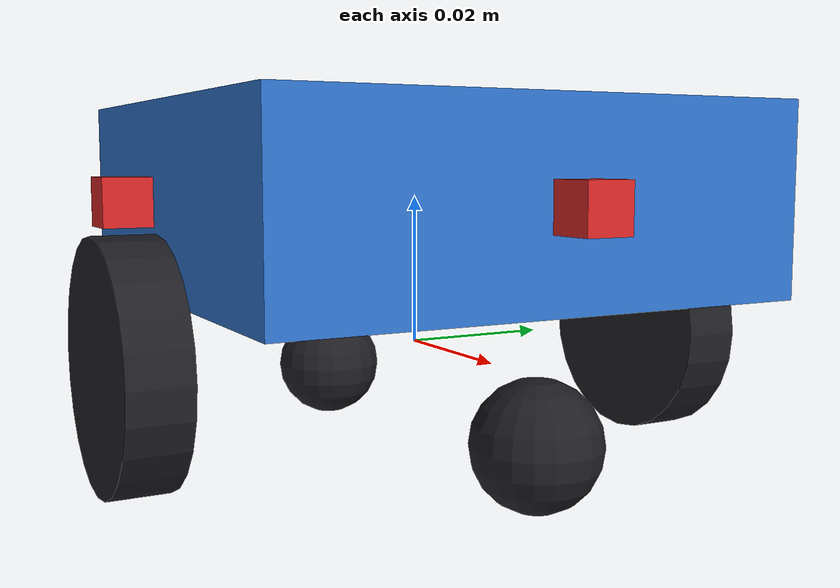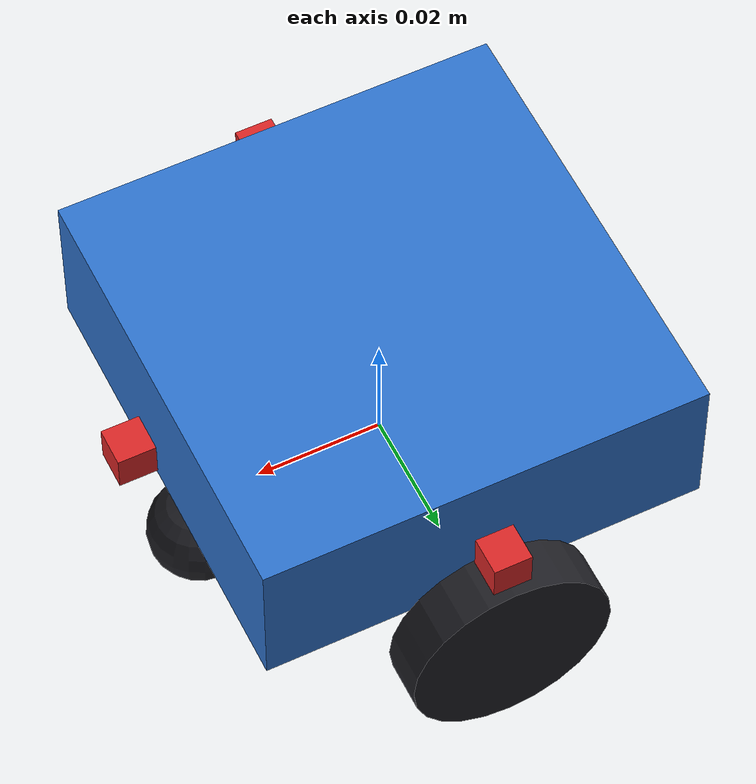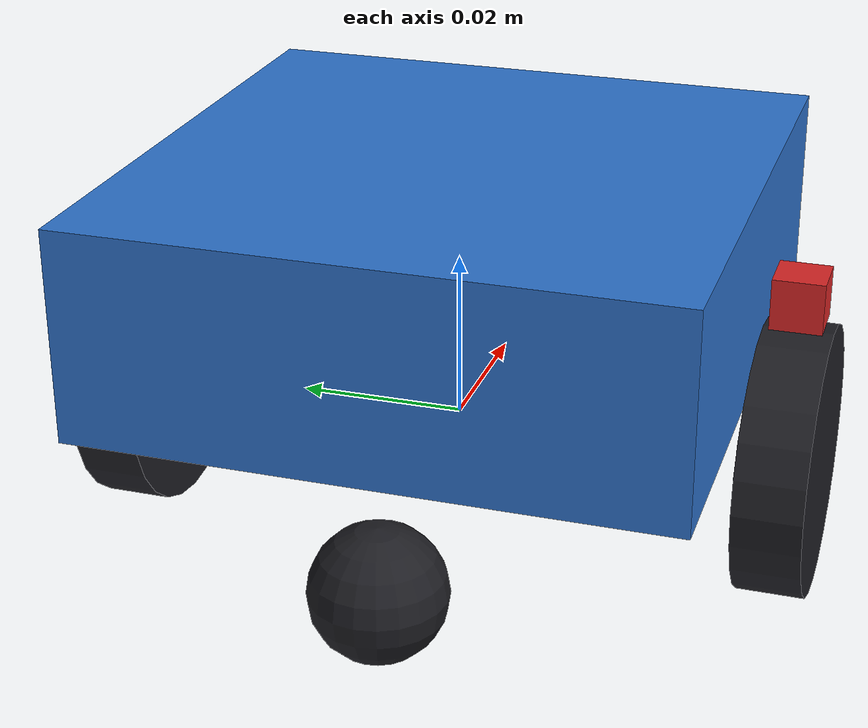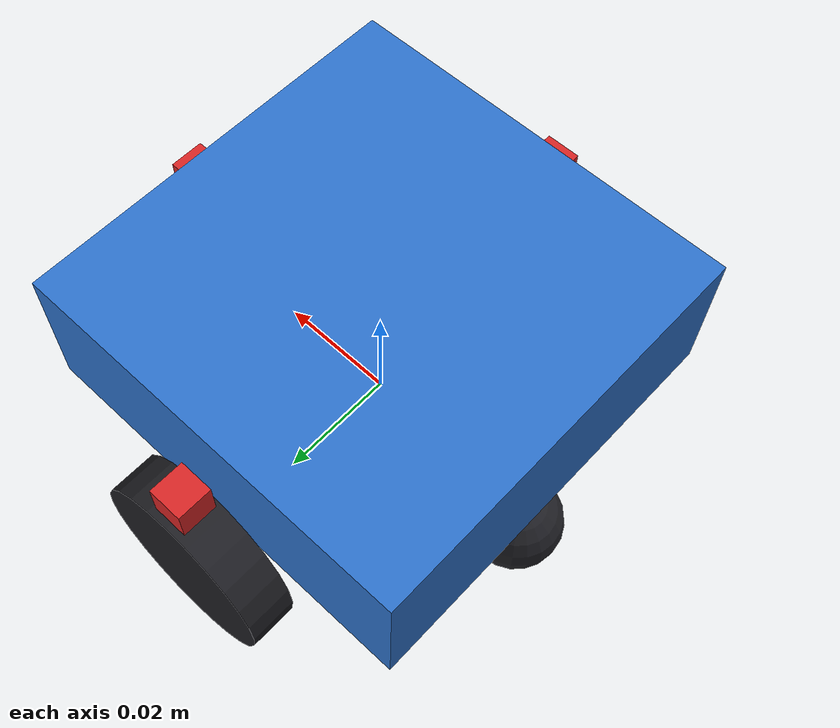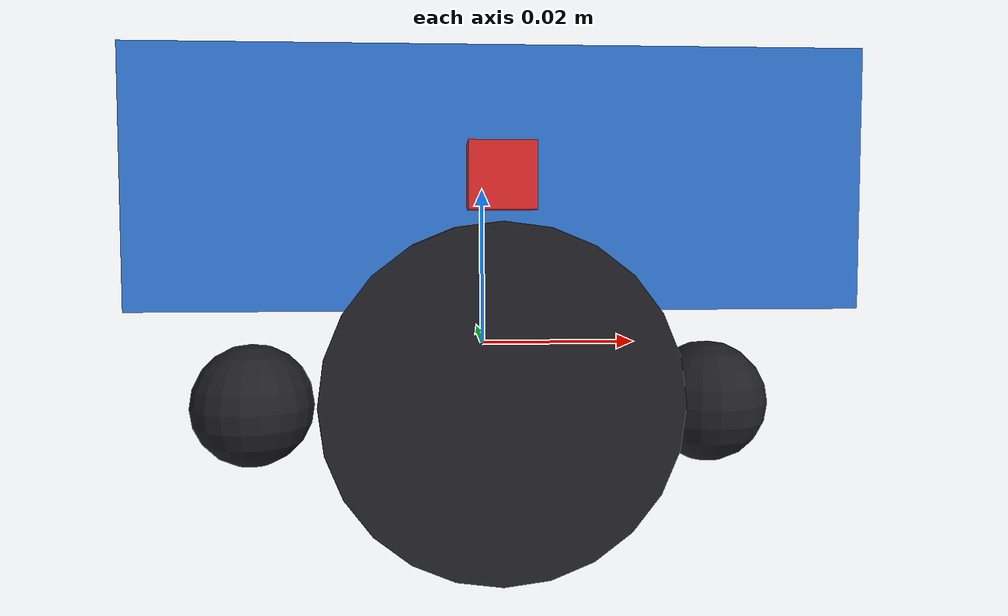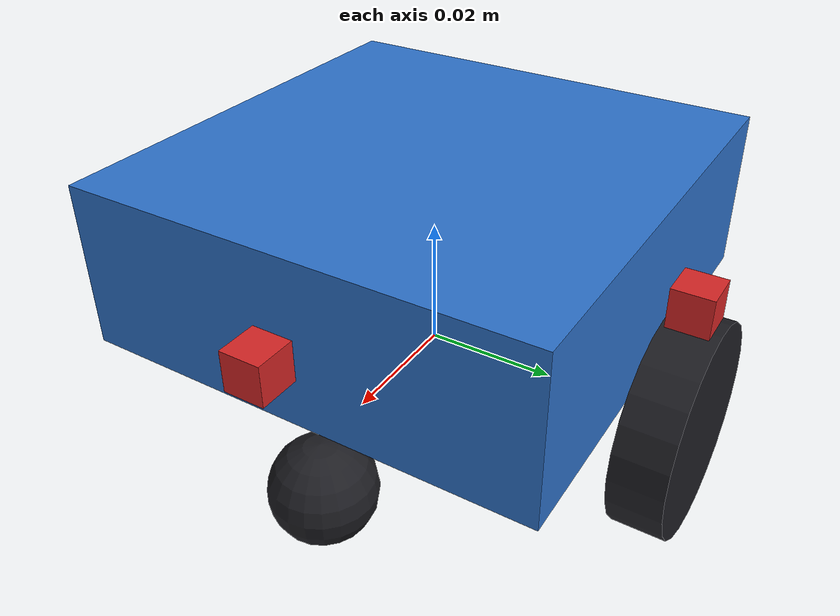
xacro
<?xml version="1.0"?>
<robot name="micromouse" xmlns:xacro="http://www.ros.org/wiki/xacro">

  <xacro:arg name="controllers_yaml" default=""/>

  <!-- ===================== dimensions ===================== -->
  <xacro:property name="base_size" value="0.07"/>
  <xacro:property name="base_height" value="0.025"/>
  <xacro:property name="base_z" value="0.02"/>
  <xacro:property name="base_mass" value="0.12"/>

  <xacro:property name="wheel_radius" value="0.016"/>
  <xacro:property name="wheel_width" value="0.008"/>
  <xacro:property name="wheel_separation" value="0.08"/>
  <xacro:property name="wheel_mass" value="0.02"/>

  <xacro:property name="caster_radius" value="0.008"/>
  <xacro:property name="caster_mass" value="0.005"/>
  <xacro:property name="caster_z" value="${-(wheel_radius - caster_radius)}"/>

  <xacro:property name="ir_range_min" value="0.01"/>
  <xacro:property name="ir_range_max" value="0.5"/>
  <xacro:property name="ir_noise_stddev" value="0.005"/>
  <xacro:property name="ir_update_rate" value="20"/>

  <material name="chassis_blue"><color rgba="0.18 0.45 0.80 1"/></material>
  <material name="wheel_dark"><color rgba="0.12 0.12 0.14 1"/></material>
  <material name="sensor_red"><color rgba="0.85 0.15 0.15 1"/></material>

  <!-- ===================== base ===================== -->
  <link name="base_link">
    <visual>
      <origin xyz="0 0 ${base_z}" rpy="0 0 0"/>
      <geometry><box size="${base_size} ${base_size} ${base_height}"/></geometry>
      <material name="chassis_blue"/>
    </visual>
    <collision>
      <origin xyz="0 0 ${base_z}" rpy="0 0 0"/>
      <geometry><box size="${base_size} ${base_size} ${base_height}"/></geometry>
    </collision>
    <inertial>
      <origin xyz="0 0 ${base_z}" rpy="0 0 0"/>
      <mass value="${base_mass}"/>
      <inertia
        ixx="${base_mass*(base_size*base_size+base_height*base_height)/12}" ixy="0" ixz="0"
        iyy="${base_mass*(base_size*base_size+base_height*base_height)/12}" iyz="0"
        izz="${base_mass*(base_size*base_size+base_size*base_size)/12}"/>
    </inertial>
  </link>

  <gazebo reference="base_link">
    <mu1>0.05</mu1>
    <mu2>0.05</mu2>
  </gazebo>

  <!-- ===================== wheels ===================== -->
  <xacro:macro name="wheel" params="prefix reflect">
    <link name="${prefix}_wheel_link">
      <visual>
        <origin xyz="0 0 0" rpy="1.5708 0 0"/>
        <geometry><cylinder radius="${wheel_radius}" length="${wheel_width}"/></geometry>
        <material name="wheel_dark"/>
      </visual>
      <collision>
        <origin xyz="0 0 0" rpy="1.5708 0 0"/>
        <geometry><cylinder radius="${wheel_radius}" length="${wheel_width}"/></geometry>
      </collision>
      <inertial>
        <mass value="${wheel_mass}"/>
        <inertia
          ixx="${wheel_mass*(3*wheel_radius*wheel_radius+wheel_width*wheel_width)/12}" ixy="0" ixz="0"
          iyy="${0.5*wheel_mass*wheel_radius*wheel_radius}" iyz="0"
          izz="${wheel_mass*(3*wheel_radius*wheel_radius+wheel_width*wheel_width)/12}"/>
      </inertial>
    </link>
    <joint name="${prefix}_wheel_joint" type="continuous">
      <parent link="base_link"/>
      <child link="${prefix}_wheel_link"/>
      <origin xyz="0 ${reflect*wheel_separation/2} 0" rpy="0 0 0"/>
      <axis xyz="0 1 0"/>
    </joint>
    <gazebo reference="${prefix}_wheel_link">
      <mu1>1.0</mu1>
      <mu2>1.0</mu2>
    </gazebo>
  </xacro:macro>

  <xacro:wheel prefix="left" reflect="1"/>
  <xacro:wheel prefix="right" reflect="-1"/>

  <!-- ===================== casters (unpowered support points) ===================== -->
  <xacro:macro name="caster" params="prefix x">
    <link name="${prefix}_caster_link">
      <visual>
        <geometry><sphere radius="${caster_radius}"/></geometry>
        <material name="wheel_dark"/>
      </visual>
      <collision>
        <geometry><sphere radius="${caster_radius}"/></geometry>
      </collision>
      <inertial>
        <mass value="${caster_mass}"/>
        <inertia
          ixx="${0.4*caster_mass*caster_radius*caster_radius}" ixy="0" ixz="0"
          iyy="${0.4*caster_mass*caster_radius*caster_radius}" iyz="0"
          izz="${0.4*caster_mass*caster_radius*caster_radius}"/>
      </inertial>
    </link>
    <joint name="${prefix}_caster_joint" type="fixed">
      <parent link="base_link"/>
      <child link="${prefix}_caster_link"/>
      <origin xyz="${x} 0 ${caster_z}" rpy="0 0 0"/>
    </joint>
    <gazebo reference="${prefix}_caster_link">
      <mu1>0.01</mu1>
      <mu2>0.01</mu2>
    </gazebo>
  </xacro:macro>

  <xacro:caster prefix="front" x="${base_size/2 - 0.005}"/>
  <xacro:caster prefix="back" x="${-(base_size/2 - 0.005)}"/>

  <!-- ===================== IR range sensors ===================== -->
  <xacro:macro name="ir_sensor" params="name x y yaw">
    <link name="${name}_link">
      <visual>
        <geometry><box size="0.006 0.006 0.006"/></geometry>
        <material name="sensor_red"/>
      </visual>
      <inertial>
        <mass value="0.001"/>
        <inertia ixx="1e-9" ixy="0" ixz="0" iyy="1e-9" iyz="0" izz="1e-9"/>
      </inertial>
    </link>
    <joint name="${name}_joint" type="fixed">
      <parent link="base_link"/>
      <child link="${name}_link"/>
      <origin xyz="${x} ${y} ${base_z}" rpy="0 0 ${yaw}"/>
    </joint>
    <gazebo reference="${name}_link">
      <sensor name="${name}" type="gpu_lidar">
        <pose>0 0 0 0 0 0</pose>
        <topic>${name}</topic>
        <update_rate>${ir_update_rate}</update_rate>
        <always_on>true</always_on>
        <visualize>false</visualize>
        <lidar>
          <scan>
            <horizontal>
              <samples>1</samples>
              <min_angle>0.0</min_angle>
              <max_angle>0.0</max_angle>
            </horizontal>
            <vertical>
              <samples>1</samples>
              <min_angle>0.0</min_angle>
              <max_angle>0.0</max_angle>
            </vertical>
          </scan>
          <range>
            <min>${ir_range_min}</min>
            <max>${ir_range_max}</max>
            <resolution>0.001</resolution>
          </range>
          <noise>
            <type>gaussian</type>
            <mean>0.0</mean>
            <stddev>${ir_noise_stddev}</stddev>
          </noise>
        </lidar>
      </sensor>
    </gazebo>
  </xacro:macro>

  <xacro:ir_sensor name="ir_front" x="${base_size/2 + 0.005}" y="0" yaw="0"/>
  <xacro:ir_sensor name="ir_left" x="0" y="${base_size/2 + 0.005}" yaw="1.5708"/>
  <xacro:ir_sensor name="ir_right" x="0" y="${-(base_size/2 + 0.005)}" yaw="-1.5708"/>

  <link name="imu_link">
    <inertial>
      <mass value="0.001"/>
      <inertia ixx="1e-9" ixy="0" ixz="0" iyy="1e-9" iyz="0" izz="1e-9"/>
    </inertial>
  </link>
  <joint name="imu_joint" type="fixed">
    <parent link="base_link"/>
    <child link="imu_link"/>
    <origin xyz="0 0 ${base_z}" rpy="0 0 0"/>
  </joint>
  <gazebo reference="imu_link">
    <sensor name="imu_sensor" type="imu">
      <topic>imu</topic>
      <update_rate>100</update_rate>
      <always_on>true</always_on>
      <visualize>false</visualize>
    </sensor>
  </gazebo>

  <!-- ===================== ros2_control ===================== -->
  <ros2_control name="micromouse_hardware" type="system">
    <hardware>
      <plugin>gz_ros2_control/GazeboSimSystem</plugin>
    </hardware>
    <joint name="left_wheel_joint">
      <command_interface name="velocity"/>
      <state_interface name="position"/>
      <state_interface name="velocity"/>
    </joint>
    <joint name="right_wheel_joint">
      <command_interface name="velocity"/>
      <state_interface name="position"/>
      <state_interface name="velocity"/>
    </joint>
  </ros2_control>

  <gazebo>
    <plugin filename="gz_ros2_control-system" name="gz_ros2_control::GazeboSimROS2ControlPlugin">
      <parameters>$(arg controllers_yaml)</parameters>
    </plugin>
  </gazebo>

</robot>
